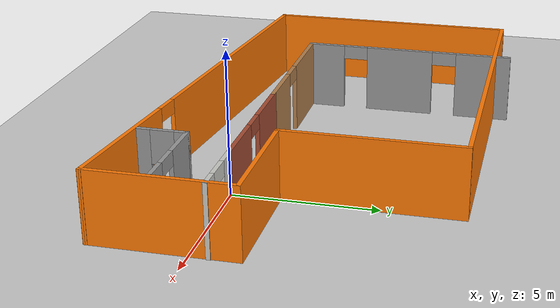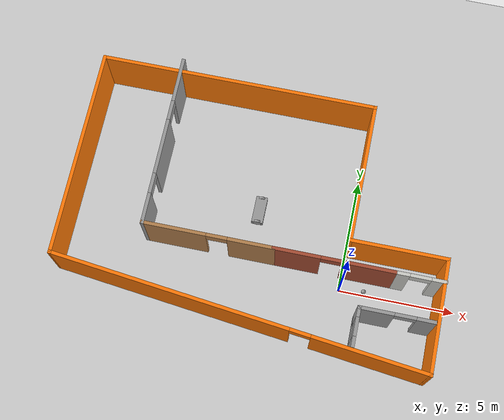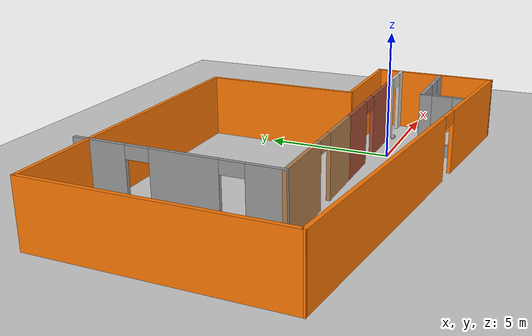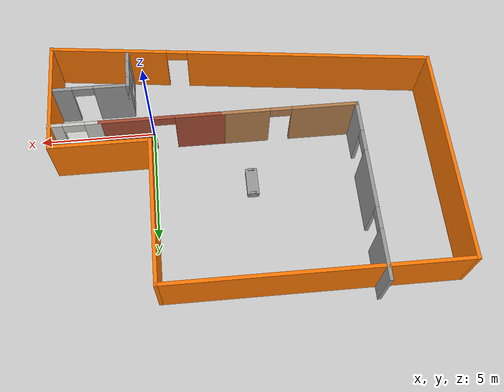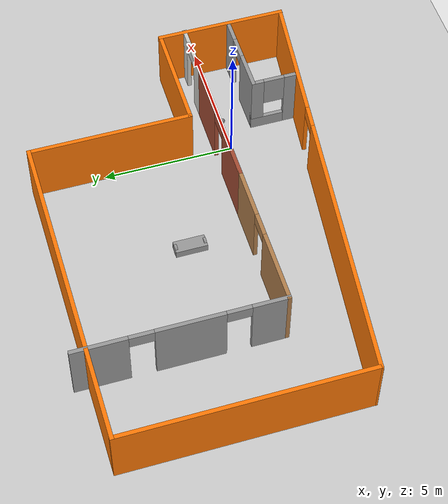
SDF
<sdf version="1.6">
 <world name="default">
  <plugin name="hello" filename="libhello.so"/>
  <light name="sun" type="directional">
   <pose>0 0 10 0 -0 0</pose>
   <diffuse>0.8 0.8 0.8 1</diffuse>
   <specular>0.2 0.2 0.2 1</specular>
   <attenuation>
    <range>1000</range>
    <constant>0.9</constant>
    <linear>0.01</linear>
    <quadratic>0.001</quadratic>
   </attenuation>
   <direction>-0.5 0.1 -0.9</direction>
  </light>
  <model name="ground_plane">
   <static>1</static>
   <link name="link">
    <collision name="collision">
     <geometry><plane><normal>0 0 1</normal><size>100 100</size></plane></geometry>
     <surface>
      <contact><collide_bitmask>65535</collide_bitmask></contact>
      <friction><ode><mu>100</mu><mu2>50</mu2></ode></friction>
     </surface>
    </collision>
    <visual name="visual">
     <cast_shadows>0</cast_shadows>
     <geometry><plane><normal>0 0 1</normal><size>100 100</size></plane></geometry>
     <material>
      <script><uri>file://media/materials/scripts/gazebo.material</uri><name>Gazebo/Grey</name></script>
     </material>
    </visual>
   </link>
  </model>
  <gravity>0 0 -9.8</gravity>
  <magnetic_field>6e-06 2.3e-05 -4.2e-05</magnetic_field>
  <atmosphere type="adiabatic"/>
  <physics name="default_physics" default="0" type="ode">
   <max_step_size>0.001</max_step_size>
   <real_time_factor>1</real_time_factor>
   <real_time_update_rate>1000</real_time_update_rate>
  </physics>
  <scene><ambient>0.4 0.4 0.4 1</ambient><background>0.7 0.7 0.7 1</background><shadows>1</shadows></scene>
  <spherical_coordinates>
   <surface_model>EARTH_WGS84</surface_model>
   <latitude_deg>0</latitude_deg>
   <longitude_deg>0</longitude_deg>
   <elevation>0</elevation>
   <heading_deg>0</heading_deg>
  </spherical_coordinates>
  <model name="mymodel">
   <link name="link_3">
    <pose>-4.09292 2.83793 0.5 0 -0 0</pose>
    <inertial>
     <mass>1</mass>
     <inertia>
      <ixx>0.166667</ixx>
      <ixy>0</ixy>
      <ixz>0</ixz>
      <iyy>0.166667</iyy>
      <iyz>0</iyz>
      <izz>0.166667</izz>
     </inertia>
    </inertial>
    <visual name="visual">
     <geometry><box><size>0.5 1.2 0.3</size></box></geometry>
     <material>
      <lighting>1</lighting>
      <script><uri>file://media/materials/scripts/gazebo.material</uri><name>Gazebo/Grey</name></script>
      <shader type="pixel"><normal_map>__default__</normal_map></shader>
      <ambient>0.3 0.3 0.3 1</ambient>
      <diffuse>0.7 0.7 0.7 1</diffuse>
      <specular>0.01 0.01 0.01 1</specular>
      <emissive>0 0 0 1</emissive>
     </material>
    </visual>
    <collision name="collision">
     <geometry><box><size>0.5 1.2 0.3</size></box></geometry>
     <surface>
      <friction>
       <ode><mu>1</mu><mu2>1</mu2><fdir1>0 0 0</fdir1><slip1>0</slip1><slip2>0</slip2></ode>
       <torsional>
        <coefficient>1</coefficient>
        <patch_radius>0</patch_radius>
        <surface_radius>0</surface_radius>
        <use_patch_radius>1</use_patch_radius>
        <ode><slip>0</slip></ode>
       </torsional>
      </friction>
      <bounce><restitution_coefficient>0</restitution_coefficient><threshold>1e+06</threshold></bounce>
      <contact>
       <collide_without_contact>0</collide_without_contact>
       <collide_without_contact_bitmask>1</collide_without_contact_bitmask>
       <collide_bitmask>1</collide_bitmask>
       <ode>
        <soft_cfm>0</soft_cfm>
        <soft_erp>0.2</soft_erp>
        <kp>1e+13</kp>
        <kd>1</kd>
        <max_vel>0.01</max_vel>
        <min_depth>0</min_depth>
       </ode>
       <bullet>
        <split_impulse>1</split_impulse>
        <split_impulse_penetration_threshold>-0.01</split_impulse_penetration_threshold>
        <soft_cfm>0</soft_cfm>
        <soft_erp>0.2</soft_erp>
        <kp>1e+13</kp>
        <kd>1</kd>
       </bullet>
      </contact>
     </surface>
    </collision>
   </link>
   <link name="link_4">
    <pose>-4.09292 2.28791 0.5 1.5707 -0 0</pose>
    <inertial>
     <mass>1</mass>
     <inertia><ixx>0.145833</ixx><ixy>0</ixy><ixz>0</ixz><iyy>0.145833</iyy><iyz>0</iyz><izz>0.125</izz></inertia>
    </inertial>
    <visual name="visual">
     <geometry><cylinder><radius>0.2</radius><length>0.1</length></cylinder></geometry>
     <material>
      <lighting>1</lighting>
      <script><uri>file://media/materials/scripts/gazebo.material</uri><name>Gazebo/Grey</name></script>
      <shader type="pixel"><normal_map>__default__</normal_map></shader>
      <ambient>0.3 0.3 0.3 1</ambient>
      <diffuse>0.7 0.7 0.7 1</diffuse>
      <specular>0.01 0.01 0.01 1</specular>
      <emissive>0 0 0 1</emissive>
     </material>
    </visual>
    <collision name="collision">
     <geometry><cylinder><radius>0.2</radius><length>0.1</length></cylinder></geometry>
     <surface>
      <friction>
       <ode><mu>1</mu><mu2>1</mu2><fdir1>0 0 0</fdir1><slip1>0</slip1><slip2>0</slip2></ode>
       <torsional>
        <coefficient>1</coefficient>
        <patch_radius>0</patch_radius>
        <surface_radius>0</surface_radius>
        <use_patch_radius>1</use_patch_radius>
        <ode><slip>0</slip></ode>
       </torsional>
      </friction>
      <bounce><restitution_coefficient>0</restitution_coefficient><threshold>1e+06</threshold></bounce>
      <contact>
       <collide_without_contact>0</collide_without_contact>
       <collide_without_contact_bitmask>1</collide_without_contact_bitmask>
       <collide_bitmask>1</collide_bitmask>
       <ode>
        <soft_cfm>0</soft_cfm>
        <soft_erp>0.2</soft_erp>
        <kp>1e+13</kp>
        <kd>1</kd>
        <max_vel>0.01</max_vel>
        <min_depth>0</min_depth>
       </ode>
       <bullet>
        <split_impulse>1</split_impulse>
        <split_impulse_penetration_threshold>-0.01</split_impulse_penetration_threshold>
        <soft_cfm>0</soft_cfm>
        <soft_erp>0.2</soft_erp>
        <kp>1e+13</kp>
        <kd>1</kd>
       </bullet>
      </contact>
     </surface>
    </collision>
   </link>
   <link name="link_4_clone">
    <pose>-4.09292 3.38795 0.5 1.5707 -0 0</pose>
    <inertial>
     <mass>1</mass>
     <inertia><ixx>0.145833</ixx><ixy>0</ixy><ixz>0</ixz><iyy>0.145833</iyy><iyz>0</iyz><izz>0.125</izz></inertia>
    </inertial>
    <visual name="visual">
     <geometry><cylinder><radius>0.2</radius><length>0.1</length></cylinder></geometry>
     <material>
      <lighting>1</lighting>
      <script><uri>file://media/materials/scripts/gazebo.material</uri><name>Gazebo/Grey</name></script>
      <shader type="pixel"><normal_map>__default__</normal_map></shader>
      <ambient>0.3 0.3 0.3 1</ambient>
      <diffuse>0.7 0.7 0.7 1</diffuse>
      <specular>0.01 0.01 0.01 1</specular>
      <emissive>0 0 0 1</emissive>
     </material>
    </visual>
    <collision name="collision">
     <geometry><cylinder><radius>0.2</radius><length>0.1</length></cylinder></geometry>
     <surface>
      <friction>
       <ode><mu>1</mu><mu2>1</mu2><fdir1>0 0 0</fdir1><slip1>0</slip1><slip2>0</slip2></ode>
       <torsional>
        <coefficient>1</coefficient>
        <patch_radius>0</patch_radius>
        <surface_radius>0</surface_radius>
        <use_patch_radius>1</use_patch_radius>
        <ode><slip>0</slip></ode>
       </torsional>
      </friction>
      <bounce><restitution_coefficient>0</restitution_coefficient><threshold>1e+06</threshold></bounce>
      <contact>
       <collide_without_contact>0</collide_without_contact>
       <collide_without_contact_bitmask>1</collide_without_contact_bitmask>
       <collide_bitmask>1</collide_bitmask>
       <ode>
        <soft_cfm>0</soft_cfm>
        <soft_erp>0.2</soft_erp>
        <kp>1e+13</kp>
        <kd>1</kd>
        <max_vel>0.01</max_vel>
        <min_depth>0</min_depth>
       </ode>
       <bullet>
        <split_impulse>1</split_impulse>
        <split_impulse_penetration_threshold>-0.01</split_impulse_penetration_threshold>
        <soft_cfm>0</soft_cfm>
        <soft_erp>0.2</soft_erp>
        <kp>1e+13</kp>
        <kd>1</kd>
       </bullet>
      </contact>
     </surface>
    </collision>
   </link>
   <joint name="link_3_JOINT_0" type="revolute">
    <parent>link_3</parent>
    <child>link_4</child>
    <axis>
     <xyz>0 0 1</xyz>
     <use_parent_model_frame>0</use_parent_model_frame>
     <limit>
      <lower>-1.79769e+308</lower>
      <upper>1.79769e+308</upper>
      <effort>-1</effort>
      <velocity>-1</velocity>
     </limit>
     <dynamics>
      <spring_reference>0</spring_reference>
      <spring_stiffness>0</spring_stiffness>
      <damping>0</damping>
     </dynamics>
    </axis>
    <physics>
     <ode><limit><cfm>0</cfm><erp>0.2</erp></limit><suspension><cfm>0</cfm><erp>0.2</erp></suspension></ode>
    </physics>
   </joint>
   <joint name="link_3_JOINT_1" type="revolute">
    <parent>link_3</parent>
    <child>link_4_clone</child>
    <axis>
     <xyz>0 0 1</xyz>
     <use_parent_model_frame>0</use_parent_model_frame>
     <limit>
      <lower>-1.79769e+308</lower>
      <upper>1.79769e+308</upper>
      <effort>-1</effort>
      <velocity>-1</velocity>
     </limit>
     <dynamics>
      <spring_reference>0</spring_reference>
      <spring_stiffness>0</spring_stiffness>
      <damping>0</damping>
     </dynamics>
    </axis>
    <physics>
     <ode><limit><cfm>0</cfm><erp>0.2</erp></limit><suspension><cfm>0</cfm><erp>0.2</erp></suspension></ode>
    </physics>
   </joint>
   <static>0</static>
   <pose>0 7.4e-05 -0.299995 0 -0 0</pose>
  </model>
  <model name="mybuilding">
   <pose>-3.9701 2.23976 0 0 -0 0</pose>
   <link name="Wall_0">
    <collision name="Wall_0_Collision">
     <geometry><box><size>9.25 0.15 2.5</size></box></geometry>
     <pose>0 0 1.25 0 -0 0</pose>
    </collision>
    <visual name="Wall_0_Visual">
     <pose>0 0 1.25 0 -0 0</pose>
     <geometry><box><size>9.25 0.15 2.5</size></box></geometry>
     <material>
      <script><uri>file://media/materials/scripts/gazebo.material</uri><name>Gazebo/Grey</name></script>
      <ambient>0.996078 0.47451 0.0196078 1</ambient>
     </material>
     <meta><layer>0</layer></meta>
    </visual>
    <pose>-8.1 0.929012 0 0 -0 1.5708</pose>
   </link>
   <link name="Wall_1">
    <collision name="Wall_1_Collision">
     <geometry><box><size>12.25 0.15 2.5</size></box></geometry>
     <pose>0 0 1.25 0 -0 0</pose>
    </collision>
    <visual name="Wall_1_Visual">
     <pose>0 0 1.25 0 -0 0</pose>
     <geometry><box><size>12.25 0.15 2.5</size></box></geometry>
     <material>
      <script><uri>file://media/materials/scripts/gazebo.material</uri><name>Gazebo/Grey</name></script>
      <ambient>0.996078 0.47451 0.0196078 1</ambient>
     </material>
     <meta><layer>0</layer></meta>
    </visual>
    <pose>-2.05 5.47901 0 0 -0 0</pose>
   </link>
   <link name="Wall_2">
    <collision name="Wall_2_Collision">
     <geometry><box><size>6.25 0.15 2.5</size></box></geometry>
     <pose>0 0 1.25 0 -0 0</pose>
    </collision>
    <visual name="Wall_2_Visual">
     <pose>0 0 1.25 0 -0 0</pose>
     <geometry><box><size>6.25 0.15 2.5</size></box></geometry>
     <material>
      <script><uri>file://media/materials/scripts/gazebo.material</uri><name>Gazebo/Grey</name></script>
      <ambient>0.996078 0.47451 0.0196078 1</ambient>
     </material>
     <meta><layer>0</layer></meta>
    </visual>
    <pose>4 2.42901 0 0 0 -1.5708</pose>
   </link>
   <link name="Wall_3">
    <collision name="Wall_3_Collision">
     <geometry><box><size>4.25 0.15 2.5</size></box></geometry>
     <pose>0 0 1.25 0 -0 0</pose>
    </collision>
    <visual name="Wall_3_Visual">
     <pose>0 0 1.25 0 -0 0</pose>
     <geometry><box><size>4.25 0.15 2.5</size></box></geometry>
     <material>
      <script><uri>file://media/materials/scripts/gazebo.material</uri><name>Gazebo/Grey</name></script>
      <ambient>0.996078 0.47451 0.0196078 1</ambient>
     </material>
     <meta><layer>0</layer></meta>
    </visual>
    <pose>6.05 -0.620988 0 0 -0 0</pose>
   </link>
   <link name="Wall_4">
    <collision name="Wall_4_Collision">
     <geometry><box><size>5 0.15 2.5</size></box></geometry>
     <pose>0 0 1.25 0 -0 0</pose>
    </collision>
    <visual name="Wall_4_Visual">
     <pose>0 0 1.25 0 -0 0</pose>
     <geometry><box><size>5 0.15 2.5</size></box></geometry>
     <material>
      <script><uri>file://media/materials/scripts/gazebo.material</uri><name>Gazebo/Grey</name></script>
      <ambient>0.996078 0.47451 0.0196078 1</ambient>
     </material>
     <meta><layer>0</layer></meta>
    </visual>
    <pose>8.1 -3.04599 0 0 0 -1.5708</pose>
   </link>
   <link name="Wall_5">
    <pose>0 -4.54599 0 0 -0 3.02789</pose>
    <visual name="Wall_5_Visual_0">
     <pose>-5.68931 0 1.25 0 -0 0</pose>
     <geometry><box><size>5.07667 0.15 2.5</size></box></geometry>
     <material>
      <script><uri>file://media/materials/scripts/gazebo.material</uri><name>Gazebo/Grey</name></script>
      <ambient>0.996078 0.47451 0.0196078 1</ambient>
     </material>
     <meta><layer>0</layer></meta>
    </visual>
    <collision name="Wall_5_Collision_0">
     <geometry><box><size>5.07667 0.15 2.5</size></box></geometry>
     <pose>-5.68931 0 1.25 0 -0 0</pose>
    </collision>
    <visual name="Wall_5_Visual_1">
     <pose>2.98834 0 1.25 0 -0 0</pose>
     <geometry><box><size>10.4786 0.15 2.5</size></box></geometry>
     <material>
      <script><uri>file://media/materials/scripts/gazebo.material</uri><name>Gazebo/Grey</name></script>
      <ambient>0.996078 0.47451 0.0196078 1</ambient>
     </material>
     <meta><layer>0</layer></meta>
    </visual>
    <collision name="Wall_5_Collision_1">
     <geometry><box><size>10.4786 0.15 2.5</size></box></geometry>
     <pose>2.98834 0 1.25 0 -0 0</pose>
    </collision>
    <visual name="Wall_5_Visual_2">
     <pose>-2.70098 0 2.25 0 -0 0</pose>
     <geometry><box><size>0.9 0.15 0.5</size></box></geometry>
     <material>
      <script><uri>file://media/materials/scripts/gazebo.material</uri><name>Gazebo/Grey</name></script>
      <ambient>0.996078 0.47451 0.0196078 1</ambient>
     </material>
     <meta><layer>0</layer></meta>
    </visual>
    <collision name="Wall_5_Collision_2">
     <geometry><box><size>0.9 0.15 0.5</size></box></geometry>
     <pose>-2.70098 0 2.25 0 -0 0</pose>
    </collision>
   </link>
   <static>1</static>
  </model>
  <model name="Untitled">
   <link name="link_0">
    <inertial>
     <mass>1</mass>
     <inertia><ixx>0.1</ixx><ixy>0</ixy><ixz>0</ixz><iyy>0.1</iyy><iyz>0</iyz><izz>0.1</izz></inertia>
    </inertial>
    <visual name="visual">
     <geometry><sphere><radius>0.1</radius></sphere></geometry>
     <material>
      <lighting>1</lighting>
      <script><uri>file://media/materials/scripts/gazebo.material</uri><name>Gazebo/Grey</name></script>
      <shader type="pixel"><normal_map>__default__</normal_map></shader>
      <ambient>0.3 0.3 0.3 1</ambient>
      <diffuse>0.7 0.7 0.7 1</diffuse>
      <specular>0.01 0.01 0.01 1</specular>
      <emissive>0 0 0 1</emissive>
     </material>
    </visual>
    <collision name="collision">
     <geometry><sphere><radius>0.5</radius></sphere></geometry>
     <surface>
      <friction>
       <ode><mu>1</mu><mu2>1</mu2><fdir1>0 0 0</fdir1><slip1>0</slip1><slip2>0</slip2></ode>
       <torsional>
        <coefficient>1</coefficient>
        <patch_radius>0</patch_radius>
        <surface_radius>0</surface_radius>
        <use_patch_radius>1</use_patch_radius>
        <ode><slip>0</slip></ode>
       </torsional>
      </friction>
      <bounce><restitution_coefficient>0</restitution_coefficient><threshold>1e+06</threshold></bounce>
      <contact>
       <collide_without_contact>0</collide_without_contact>
       <collide_without_contact_bitmask>1</collide_without_contact_bitmask>
       <collide_bitmask>1</collide_bitmask>
       <ode>
        <soft_cfm>0</soft_cfm>
        <soft_erp>0.2</soft_erp>
        <kp>1e+13</kp>
        <kd>1</kd>
        <max_vel>0.01</max_vel>
        <min_depth>0</min_depth>
       </ode>
       <bullet>
        <split_impulse>1</split_impulse>
        <split_impulse_penetration_threshold>-0.01</split_impulse_penetration_threshold>
        <soft_cfm>0</soft_cfm>
        <soft_erp>0.2</soft_erp>
        <kp>1e+13</kp>
        <kd>1</kd>
       </bullet>
      </contact>
     </surface>
    </collision>
   </link>
   <static>0</static>
   <pose>1.03329 0.056275 0.5 0.020997 -1e-06 0</pose>
  </model>
  <model name="my_building_v2">
   <pose>-2.24 2.77 0 0 -0 0</pose>
   <link name="Wall_0">
    <pose>3.11 -4.67 0 0 -0 1.5708</pose>
    <visual name="Wall_0_Visual_0">
     <pose>-0.6425 0 1.25 0 -0 0</pose>
     <geometry><box><size>0.465 0.15 2.5</size></box></geometry>
     <material>
      <script><uri>file://media/materials/scripts/gazebo.material</uri><name>Gazebo/Grey</name></script>
      <ambient>1 1 1 1</ambient>
     </material>
     <meta><layer>0</layer></meta>
    </visual>
    <collision name="Wall_0_Collision_0">
     <geometry><box><size>0.465 0.15 2.5</size></box></geometry>
     <pose>-0.6425 0 1.25 0 -0 0</pose>
    </collision>
    <visual name="Wall_0_Visual_1">
     <pose>0.2325 0 0.25 0 -0 0</pose>
     <geometry><box><size>1.285 0.15 0.5</size></box></geometry>
     <material>
      <script><uri>file://media/materials/scripts/gazebo.material</uri><name>Gazebo/Grey</name></script>
      <ambient>1 1 1 1</ambient>
     </material>
     <meta><layer>0</layer></meta>
    </visual>
    <collision name="Wall_0_Collision_1">
     <geometry><box><size>1.285 0.15 0.5</size></box></geometry>
     <pose>0.2325 0 0.25 0 -0 0</pose>
    </collision>
    <visual name="Wall_0_Visual_2">
     <pose>0.6325 0 1.5 0 -0 0</pose>
     <geometry><box><size>0.485 0.15 2</size></box></geometry>
     <material>
      <script><uri>file://media/materials/scripts/gazebo.material</uri><name>Gazebo/Grey</name></script>
      <ambient>1 1 1 1</ambient>
     </material>
     <meta><layer>0</layer></meta>
    </visual>
    <collision name="Wall_0_Collision_2">
     <geometry><box><size>0.485 0.15 2</size></box></geometry>
     <pose>0.6325 0 1.5 0 -0 0</pose>
    </collision>
    <visual name="Wall_0_Visual_3">
     <pose>-0.01 0 1.9 0 -0 0</pose>
     <geometry><box><size>0.8 0.15 1.2</size></box></geometry>
     <material>
      <script><uri>file://media/materials/scripts/gazebo.material</uri><name>Gazebo/Grey</name></script>
      <ambient>1 1 1 1</ambient>
     </material>
     <meta><layer>0</layer></meta>
    </visual>
    <collision name="Wall_0_Collision_3">
     <geometry><box><size>0.8 0.15 1.2</size></box></geometry>
     <pose>-0.01 0 1.9 0 -0 0</pose>
    </collision>
   </link>
   <link name="Wall_1">
    <pose>4.66 -3.87 0 0 -0 0</pose>
    <visual name="Wall_1_Visual_0">
     <pose>-0.8625 0 1.25 0 -0 0</pose>
     <geometry><box><size>1.525 0.15 2.5</size></box></geometry>
     <material>
      <script><uri>file://media/materials/scripts/gazebo.material</uri><name>Gazebo/Grey</name></script>
      <ambient>1 1 1 1</ambient>
     </material>
     <meta><layer>0</layer></meta>
    </visual>
    <collision name="Wall_1_Collision_0">
     <geometry><box><size>1.525 0.15 2.5</size></box></geometry>
     <pose>-0.8625 0 1.25 0 -0 0</pose>
    </collision>
    <visual name="Wall_1_Visual_1">
     <pose>1.2125 0 1.25 0 -0 0</pose>
     <geometry><box><size>0.825 0.15 2.5</size></box></geometry>
     <material>
      <script><uri>file://media/materials/scripts/gazebo.material</uri><name>Gazebo/Grey</name></script>
      <ambient>1 1 1 1</ambient>
     </material>
     <meta><layer>0</layer></meta>
    </visual>
    <collision name="Wall_1_Collision_1">
     <geometry><box><size>0.825 0.15 2.5</size></box></geometry>
     <pose>1.2125 0 1.25 0 -0 0</pose>
    </collision>
    <visual name="Wall_1_Visual_2">
     <pose>0.35 0 2.25 0 -0 0</pose>
     <geometry><box><size>0.9 0.15 0.5</size></box></geometry>
     <material>
      <script><uri>file://media/materials/scripts/gazebo.material</uri><name>Gazebo/Grey</name></script>
      <ambient>1 1 1 1</ambient>
     </material>
     <meta><layer>0</layer></meta>
    </visual>
    <collision name="Wall_1_Collision_2">
     <geometry><box><size>0.9 0.15 0.5</size></box></geometry>
     <pose>0.35 0 2.25 0 -0 0</pose>
    </collision>
   </link>
   <link name="Wall_3">
    <pose>5.35 -2.13 0 0 -0 0</pose>
    <visual name="Wall_3_Visual_0">
     <pose>-0.778524 0 1.25 0 -0 0</pose>
     <geometry><box><size>0.692953 0.15 2.5</size></box></geometry>
     <material>
      <script><uri>file://media/materials/scripts/gazebo.material</uri><name>Gazebo/CeilingTiled</name></script>
      <ambient>1 1 1 1</ambient>
     </material>
     <meta><layer>0</layer></meta>
    </visual>
    <collision name="Wall_3_Collision_0">
     <geometry><box><size>0.692953 0.15 2.5</size></box></geometry>
     <pose>-0.778524 0 1.25 0 -0 0</pose>
    </collision>
    <visual name="Wall_3_Visual_1">
     <pose>0.796476 0 1.25 0 -0 0</pose>
     <geometry><box><size>0.657047 0.15 2.5</size></box></geometry>
     <material>
      <script><uri>file://media/materials/scripts/gazebo.material</uri><name>Gazebo/CeilingTiled</name></script>
      <ambient>1 1 1 1</ambient>
     </material>
     <meta><layer>0</layer></meta>
    </visual>
    <collision name="Wall_3_Collision_1">
     <geometry><box><size>0.657047 0.15 2.5</size></box></geometry>
     <pose>0.796476 0 1.25 0 -0 0</pose>
    </collision>
    <visual name="Wall_3_Visual_2">
     <pose>0.017953 0 2.25 0 -0 0</pose>
     <geometry><box><size>0.9 0.15 0.5</size></box></geometry>
     <material>
      <script><uri>file://media/materials/scripts/gazebo.material</uri><name>Gazebo/CeilingTiled</name></script>
      <ambient>1 1 1 1</ambient>
     </material>
     <meta><layer>0</layer></meta>
    </visual>
    <collision name="Wall_3_Collision_2">
     <geometry><box><size>0.9 0.15 0.5</size></box></geometry>
     <pose>0.017953 0 2.25 0 -0 0</pose>
    </collision>
   </link>
   <link name="Wall_5">
    <pose>1.75 -2.13 0 0 -0 3.14159</pose>
    <visual name="Wall_5_Visual_0">
     <pose>-1.48636 0 1.25 0 -0 0</pose>
     <geometry><box><size>2.27727 0.15 2.5</size></box></geometry>
     <material>
      <script><uri>file://media/materials/scripts/gazebo.material</uri><name>Gazebo/Bricks</name></script>
      <ambient>1 1 1 1</ambient>
     </material>
     <meta><layer>0</layer></meta>
    </visual>
    <collision name="Wall_5_Collision_0">
     <geometry><box><size>2.27727 0.15 2.5</size></box></geometry>
     <pose>-1.48636 0 1.25 0 -0 0</pose>
    </collision>
    <visual name="Wall_5_Visual_1">
     <pose>1.58864 0 1.25 0 -0 0</pose>
     <geometry><box><size>2.07273 0.15 2.5</size></box></geometry>
     <material>
      <script><uri>file://media/materials/scripts/gazebo.material</uri><name>Gazebo/Bricks</name></script>
      <ambient>1 1 1 1</ambient>
     </material>
     <meta><layer>0</layer></meta>
    </visual>
    <collision name="Wall_5_Collision_1">
     <geometry><box><size>2.07273 0.15 2.5</size></box></geometry>
     <pose>1.58864 0 1.25 0 -0 0</pose>
    </collision>
    <visual name="Wall_5_Visual_2">
     <pose>0.102274 0 2.25 0 -0 0</pose>
     <geometry><box><size>0.9 0.15 0.5</size></box></geometry>
     <material>
      <script><uri>file://media/materials/scripts/gazebo.material</uri><name>Gazebo/Bricks</name></script>
      <ambient>1 1 1 1</ambient>
     </material>
     <meta><layer>0</layer></meta>
    </visual>
    <collision name="Wall_5_Collision_2">
     <geometry><box><size>0.9 0.15 0.5</size></box></geometry>
     <pose>0.102274 0 2.25 0 -0 0</pose>
    </collision>
   </link>
   <link name="Wall_7">
    <pose>-3.6 -2.13 0 0 -0 3.14159</pose>
    <visual name="Wall_7_Visual_0">
     <pose>-1.85158 0 1.25 0 -0 0</pose>
     <geometry><box><size>2.04684 0.15 2.5</size></box></geometry>
     <material>
      <script><uri>file://media/materials/scripts/gazebo.material</uri><name>Gazebo/Wood</name></script>
      <ambient>1 1 1 1</ambient>
     </material>
     <meta><layer>0</layer></meta>
    </visual>
    <collision name="Wall_7_Collision_0">
     <geometry><box><size>2.04684 0.15 2.5</size></box></geometry>
     <pose>-1.85158 0 1.25 0 -0 0</pose>
    </collision>
    <visual name="Wall_7_Visual_1">
     <pose>1.47342 0 1.25 0 -0 0</pose>
     <geometry><box><size>2.80316 0.15 2.5</size></box></geometry>
     <material>
      <script><uri>file://media/materials/scripts/gazebo.material</uri><name>Gazebo/Wood</name></script>
      <ambient>1 1 1 1</ambient>
     </material>
     <meta><layer>0</layer></meta>
    </visual>
    <collision name="Wall_7_Collision_1">
     <geometry><box><size>2.80316 0.15 2.5</size></box></geometry>
     <pose>1.47342 0 1.25 0 -0 0</pose>
    </collision>
    <visual name="Wall_7_Visual_2">
     <pose>-0.378161 0 2.25 0 -0 0</pose>
     <geometry><box><size>0.9 0.15 0.5</size></box></geometry>
     <material>
      <script><uri>file://media/materials/scripts/gazebo.material</uri><name>Gazebo/Wood</name></script>
      <ambient>1 1 1 1</ambient>
     </material>
     <meta><layer>0</layer></meta>
    </visual>
    <collision name="Wall_7_Collision_2">
     <geometry><box><size>0.9 0.15 0.5</size></box></geometry>
     <pose>-0.378161 0 2.25 0 -0 0</pose>
    </collision>
   </link>
   <link name="Wall_8">
    <pose>-6.4 1.67 0 0 -0 1.5708</pose>
    <visual name="Wall_8_Visual_0">
     <pose>-3.18114 0 1.25 0 -0 0</pose>
     <geometry><box><size>1.38773 0.15 2.5</size></box></geometry>
     <material>
      <script><uri>file://media/materials/scripts/gazebo.material</uri><name>Gazebo/Grey</name></script>
      <ambient>1 1 1 1</ambient>
     </material>
     <meta><layer>0</layer></meta>
    </visual>
    <collision name="Wall_8_Collision_0">
     <geometry><box><size>1.38773 0.15 2.5</size></box></geometry>
     <pose>-3.18114 0 1.25 0 -0 0</pose>
    </collision>
    <visual name="Wall_8_Visual_1">
     <pose>-0.32839 0 1.25 0 -0 0</pose>
     <geometry><box><size>2.51777 0.15 2.5</size></box></geometry>
     <material>
      <script><uri>file://media/materials/scripts/gazebo.material</uri><name>Gazebo/Grey</name></script>
      <ambient>1 1 1 1</ambient>
     </material>
     <meta><layer>0</layer></meta>
    </visual>
    <collision name="Wall_8_Collision_1">
     <geometry><box><size>2.51777 0.15 2.5</size></box></geometry>
     <pose>-0.32839 0 1.25 0 -0 0</pose>
    </collision>
    <visual name="Wall_8_Visual_2">
     <pose>2.85275 0 1.25 0 -0 0</pose>
     <geometry><box><size>2.04451 0.15 2.5</size></box></geometry>
     <material>
      <script><uri>file://media/materials/scripts/gazebo.material</uri><name>Gazebo/Grey</name></script>
      <ambient>1 1 1 1</ambient>
     </material>
     <meta><layer>0</layer></meta>
    </visual>
    <collision name="Wall_8_Collision_2">
     <geometry><box><size>2.04451 0.15 2.5</size></box></geometry>
     <pose>2.85275 0 1.25 0 -0 0</pose>
    </collision>
    <visual name="Wall_8_Visual_3">
     <pose>-2.03727 0 2.25 0 -0 0</pose>
     <geometry><box><size>0.9 0.15 0.5</size></box></geometry>
     <material>
      <script><uri>file://media/materials/scripts/gazebo.material</uri><name>Gazebo/Grey</name></script>
      <ambient>1 1 1 1</ambient>
     </material>
     <meta><layer>0</layer></meta>
    </visual>
    <collision name="Wall_8_Collision_3">
     <geometry><box><size>0.9 0.15 0.5</size></box></geometry>
     <pose>-2.03727 0 2.25 0 -0 0</pose>
    </collision>
    <visual name="Wall_8_Visual_4">
     <pose>1.3805 0 2.25 0 -0 0</pose>
     <geometry><box><size>0.9 0.15 0.5</size></box></geometry>
     <material>
      <script><uri>file://media/materials/scripts/gazebo.material</uri><name>Gazebo/Grey</name></script>
      <ambient>1 1 1 1</ambient>
     </material>
     <meta><layer>0</layer></meta>
    </visual>
    <collision name="Wall_8_Collision_4">
     <geometry><box><size>0.9 0.15 0.5</size></box></geometry>
     <pose>1.3805 0 2.25 0 -0 0</pose>
    </collision>
   </link>
   <static>1</static>
  </model>
 </world>
</sdf>
